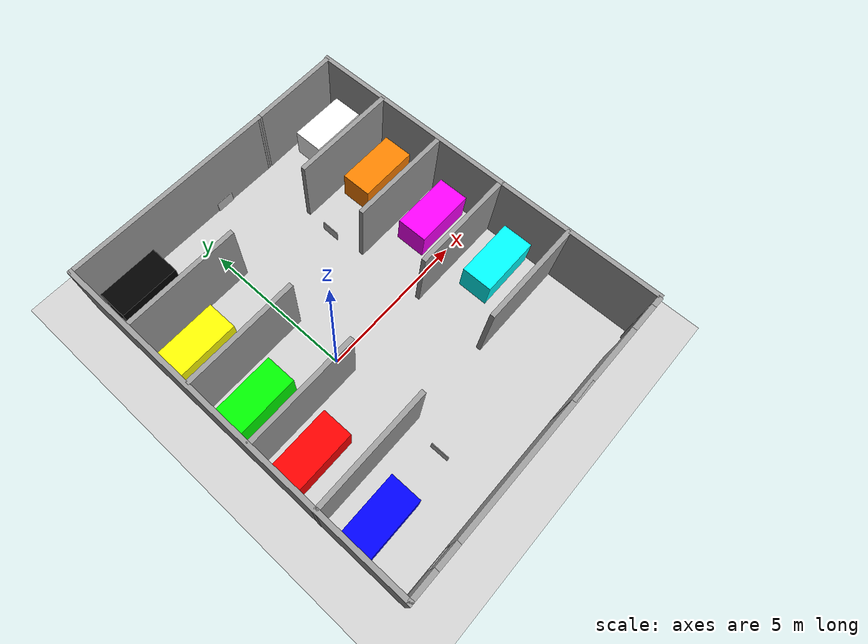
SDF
<sdf version="1.7">
 <world name="default">
  <light name="sun" type="directional">
   <pose>0 0 10 0 -0 0</pose>
   <diffuse>0.8 0.8 0.8 1</diffuse>
   <specular>0.2 0.2 0.2 1</specular>
   <attenuation>
    <range>1000</range>
    <constant>0.9</constant>
    <linear>0.01</linear>
    <quadratic>0.001</quadratic>
   </attenuation>
   <direction>-0.5 0.1 -0.9</direction>
   <spot><inner_angle>0</inner_angle><outer_angle>0</outer_angle><falloff>0</falloff></spot>
  </light>
  <model name="ground_plane">
   <static>1</static>
   <link name="link">
    <collision name="collision">
     <geometry><plane><normal>0 0 1</normal><size>100 100</size></plane></geometry>
     <surface><friction><ode><mu>100</mu><mu2>50</mu2></ode></friction></surface>
    </collision>
    <visual name="visual">
     <cast_shadows>0</cast_shadows>
     <geometry><plane><normal>0 0 1</normal><size>100 100</size></plane></geometry>
     <material>
      <script><uri>file://media/materials/scripts/gazebo.material</uri><name>Gazebo/Grey</name></script>
     </material>
    </visual>
   </link>
  </model>
  <gravity>0 0 -9.8</gravity>
  <magnetic_field>6e-06 2.3e-05 -4.2e-05</magnetic_field>
  <atmosphere type="adiabatic"/>
  <physics type="ode">
   <max_step_size>0.001</max_step_size>
   <real_time_factor>1</real_time_factor>
   <real_time_update_rate>1000</real_time_update_rate>
  </physics>
  <scene><ambient>0.4 0.4 0.4 1</ambient><background>0.7 0.7 0.7 1</background><shadows>1</shadows></scene>
  <spherical_coordinates>
   <surface_model>EARTH_WGS84</surface_model>
   <latitude_deg>0</latitude_deg>
   <longitude_deg>0</longitude_deg>
   <elevation>0</elevation>
   <heading_deg>0</heading_deg>
  </spherical_coordinates>
  <model name="new_hospital">
   <pose>1.51505 0.35072 0 0 -0 0</pose>
   <link name="Wall_0">
    <collision name="Wall_0_Collision">
     <geometry><box><size>12.3051 0.15 2.5</size></box></geometry>
     <pose>0 0 1.25 0 -0 0</pose>
    </collision>
    <visual name="Wall_0_Visual">
     <pose>0 0 1.25 0 -0 0</pose>
     <geometry><box><size>12.3051 0.15 2.5</size></box></geometry>
     <material>
      <script><uri>file://media/materials/scripts/gazebo.material</uri><name>Gazebo/Grey</name></script>
      <ambient>1 1 1 1</ambient>
     </material>
     <meta><layer>0</layer></meta>
    </visual>
    <pose>-5.0818 0.002297 0 0 -0 -1.5708</pose>
   </link>
   <link name="Wall_1">
    <collision name="Wall_1_Collision">
     <geometry><box><size>0.15 0.15 2.5</size></box></geometry>
     <pose>0 0 1.25 0 -0 0</pose>
    </collision>
    <visual name="Wall_1_Visual">
     <pose>0 0 1.25 0 -0 0</pose>
     <geometry><box><size>0.15 0.15 2.5</size></box></geometry>
     <material>
      <script><uri>file://media/materials/scripts/gazebo.material</uri><name>Gazebo/Grey</name></script>
      <ambient>1 1 1 1</ambient>
     </material>
     <meta><layer>0</layer></meta>
    </visual>
    <pose>-5.07745 -6.07527 0 0 -0 0</pose>
   </link>
   <link name="Wall_15">
    <collision name="Wall_15_Collision">
     <geometry><box><size>12.3753 0.15 2.5</size></box></geometry>
     <pose>0 0 1.25 0 -0 0</pose>
    </collision>
    <visual name="Wall_15_Visual">
     <pose>0 0 1.25 0 -0 0</pose>
     <geometry><box><size>12.3753 0.15 2.5</size></box></geometry>
     <material>
      <script><uri>file://media/materials/scripts/gazebo.material</uri><name>Gazebo/Grey</name></script>
      <ambient>1 1 1 1</ambient>
     </material>
     <meta><layer>0</layer></meta>
    </visual>
    <pose>5.06248 0.015457 0 0 -0 -1.56701</pose>
   </link>
   <link name="Wall_17">
    <collision name="Wall_17_Collision">
     <geometry><box><size>3.1412 0.15 2.5</size></box></geometry>
     <pose>0 0 1.25 0 -0 0</pose>
    </collision>
    <visual name="Wall_17_Visual">
     <pose>0 0 1.25 0 -0 0</pose>
     <geometry><box><size>3.1412 0.15 2.5</size></box></geometry>
     <material>
      <script><uri>file://media/materials/scripts/gazebo.material</uri><name>Gazebo/Grey</name></script>
      <ambient>1 1 1 1</ambient>
     </material>
     <meta><layer>0</layer></meta>
    </visual>
    <pose>3.45215 6.07474 0 0 -0 0.015185</pose>
   </link>
   <link name="Wall_19">
    <collision name="Wall_19_Collision">
     <geometry><box><size>3.75 0.15 2.5</size></box></geometry>
     <pose>0 0 1.25 0 -0 0</pose>
    </collision>
    <visual name="Wall_19_Visual">
     <pose>0 0 1.25 0 -0 0</pose>
     <geometry><box><size>3.75 0.15 2.5</size></box></geometry>
     <material>
      <script><uri>file://media/materials/scripts/gazebo.material</uri><name>Gazebo/Grey</name></script>
      <ambient>1 1 1 1</ambient>
     </material>
     <meta><layer>0</layer></meta>
    </visual>
    <pose>-3.14193 3.76721 0 0 -0 0</pose>
   </link>
   <link name="Wall_23">
    <collision name="Wall_23_Collision">
     <geometry><box><size>3.75 0.15 2.5</size></box></geometry>
     <pose>0 0 1.25 0 -0 0</pose>
    </collision>
    <visual name="Wall_23_Visual">
     <pose>0 0 1.25 0 -0 0</pose>
     <geometry><box><size>3.75 0.15 2.5</size></box></geometry>
     <material>
      <script><uri>file://media/materials/scripts/gazebo.material</uri><name>Gazebo/Grey</name></script>
      <ambient>1 1 1 1</ambient>
     </material>
     <meta><layer>0</layer></meta>
    </visual>
    <pose>-3.18338 1.40651 0 0 -0 0</pose>
   </link>
   <link name="Wall_26">
    <collision name="Wall_26_Collision">
     <geometry><box><size>3.75 0.15 2.5</size></box></geometry>
     <pose>0 0 1.25 0 -0 0</pose>
    </collision>
    <visual name="Wall_26_Visual">
     <pose>0 0 1.25 0 -0 0</pose>
     <geometry><box><size>3.75 0.15 2.5</size></box></geometry>
     <material>
      <script><uri>file://media/materials/scripts/gazebo.material</uri><name>Gazebo/Grey</name></script>
      <ambient>1 1 1 1</ambient>
     </material>
     <meta><layer>0</layer></meta>
    </visual>
    <pose>-3.20329 -0.847547 0 0 -0 0</pose>
   </link>
   <link name="Wall_29">
    <collision name="Wall_29_Collision">
     <geometry><box><size>4 0.15 2.5</size></box></geometry>
     <pose>0 0 1.25 0 -0 0</pose>
    </collision>
    <visual name="Wall_29_Visual">
     <pose>0 0 1.25 0 -0 0</pose>
     <geometry><box><size>4 0.15 2.5</size></box></geometry>
     <material>
      <script><uri>file://media/materials/scripts/gazebo.material</uri><name>Gazebo/Grey</name></script>
      <ambient>1 1 1 1</ambient>
     </material>
     <meta><layer>0</layer></meta>
    </visual>
    <pose>-3.16089 -3.14589 0 0 -0 0</pose>
   </link>
   <link name="Wall_3">
    <collision name="Wall_3_Collision">
     <geometry><box><size>7.18423 0.15 2.5</size></box></geometry>
     <pose>0 0 1.25 0 -0 0</pose>
    </collision>
    <visual name="Wall_3_Visual">
     <pose>0 0 1.25 0 -0 0</pose>
     <geometry><box><size>7.18423 0.15 2.5</size></box></geometry>
     <material>
      <script><uri>file://media/materials/scripts/gazebo.material</uri><name>Gazebo/Grey</name></script>
      <ambient>1 1 1 1</ambient>
     </material>
     <meta><layer>0</layer></meta>
    </visual>
    <pose>-1.56036 6.06595 0 0 -0 -0.003956</pose>
   </link>
   <link name="Wall_31">
    <collision name="Wall_31_Collision">
     <geometry><box><size>3.5 0.15 2.5</size></box></geometry>
     <pose>0 0 1.25 0 -0 0</pose>
    </collision>
    <visual name="Wall_31_Visual">
     <pose>0 0 1.25 0 -0 0</pose>
     <geometry><box><size>3.5 0.15 2.5</size></box></geometry>
     <material>
      <script><uri>file://media/materials/scripts/gazebo.material</uri><name>Gazebo/Grey</name></script>
      <ambient>1 1 1 1</ambient>
     </material>
     <meta><layer>0</layer></meta>
    </visual>
    <pose>3.29176 3.78007 0 0 -0 0</pose>
   </link>
   <link name="Wall_33">
    <collision name="Wall_33_Collision">
     <geometry><box><size>3.5 0.15 2.5</size></box></geometry>
     <pose>0 0 1.25 0 -0 0</pose>
    </collision>
    <visual name="Wall_33_Visual">
     <pose>0 0 1.25 0 -0 0</pose>
     <geometry><box><size>3.5 0.15 2.5</size></box></geometry>
     <material>
      <script><uri>file://media/materials/scripts/gazebo.material</uri><name>Gazebo/Grey</name></script>
      <ambient>1 1 1 1</ambient>
     </material>
     <meta><layer>0</layer></meta>
    </visual>
    <pose>3.35294 1.54698 0 0 -0 0</pose>
   </link>
   <link name="Wall_35">
    <collision name="Wall_35_Collision">
     <geometry><box><size>3.5 0.15 2.5</size></box></geometry>
     <pose>0 0 1.25 0 -0 0</pose>
    </collision>
    <visual name="Wall_35_Visual">
     <pose>0 0 1.25 0 -0 0</pose>
     <geometry><box><size>3.5 0.15 2.5</size></box></geometry>
     <material>
      <script><uri>file://media/materials/scripts/gazebo.material</uri><name>Gazebo/Grey</name></script>
      <ambient>1 1 1 1</ambient>
     </material>
     <meta><layer>0</layer></meta>
    </visual>
    <pose>3.37986 -0.751165 0 0 -0 0</pose>
   </link>
   <link name="Wall_37">
    <collision name="Wall_37_Collision">
     <geometry><box><size>3.5 0.15 2.5</size></box></geometry>
     <pose>0 0 1.25 0 -0 0</pose>
    </collision>
    <visual name="Wall_37_Visual">
     <pose>0 0 1.25 0 -0 0</pose>
     <geometry><box><size>3.5 0.15 2.5</size></box></geometry>
     <material>
      <script><uri>file://media/materials/scripts/gazebo.material</uri><name>Gazebo/Grey</name></script>
      <ambient>1 1 1 1</ambient>
     </material>
     <meta><layer>0</layer></meta>
    </visual>
    <pose>3.3491 -3.15075 0 0 -0 0</pose>
   </link>
   <link name="Wall_5">
    <pose>-1.60662 -6.08918 0 0 -0 3.13758</pose>
    <visual name="Wall_5_Visual_0">
     <pose>-0.897025 0 1.25 0 -0 0</pose>
     <geometry><box><size>5.29766 0.15 2.5</size></box></geometry>
     <material>
      <script><uri>file://media/materials/scripts/gazebo.material</uri><name>Gazebo/Grey</name></script>
      <ambient>1 1 1 1</ambient>
     </material>
     <meta><layer>0</layer></meta>
    </visual>
    <collision name="Wall_5_Collision_0">
     <geometry><box><size>5.29766 0.15 2.5</size></box></geometry>
     <pose>-0.897025 0 1.25 0 -0 0</pose>
    </collision>
    <visual name="Wall_5_Visual_1">
     <pose>2.64883 0 0.25 0 -0 0</pose>
     <geometry><box><size>1.79405 0.15 0.5</size></box></geometry>
     <material>
      <script><uri>file://media/materials/scripts/gazebo.material</uri><name>Gazebo/Grey</name></script>
      <ambient>1 1 1 1</ambient>
     </material>
     <meta><layer>0</layer></meta>
    </visual>
    <collision name="Wall_5_Collision_1">
     <geometry><box><size>1.79405 0.15 0.5</size></box></geometry>
     <pose>2.64883 0 0.25 0 -0 0</pose>
    </collision>
    <visual name="Wall_5_Visual_2">
     <pose>3.04883 0 1.5 0 -0 0</pose>
     <geometry><box><size>0.994051 0.15 2</size></box></geometry>
     <material>
      <script><uri>file://media/materials/scripts/gazebo.material</uri><name>Gazebo/Grey</name></script>
      <ambient>1 1 1 1</ambient>
     </material>
     <meta><layer>0</layer></meta>
    </visual>
    <collision name="Wall_5_Collision_2">
     <geometry><box><size>0.994051 0.15 2</size></box></geometry>
     <pose>3.04883 0 1.5 0 -0 0</pose>
    </collision>
    <visual name="Wall_5_Visual_3">
     <pose>2.1518 0 1.9 0 -0 0</pose>
     <geometry><box><size>0.8 0.15 1.2</size></box></geometry>
     <material>
      <script><uri>file://media/materials/scripts/gazebo.material</uri><name>Gazebo/Grey</name></script>
      <ambient>1 1 1 1</ambient>
     </material>
     <meta><layer>0</layer></meta>
    </visual>
    <collision name="Wall_5_Collision_3">
     <geometry><box><size>0.8 0.15 1.2</size></box></geometry>
     <pose>2.1518 0 1.9 0 -0 0</pose>
    </collision>
   </link>
   <link name="Wall_8">
    <pose>3.11412 -6.11242 0 0 -0 3.13346</pose>
    <visual name="Wall_8_Visual_0">
     <pose>-1.78285 0 1.25 0 -0 0</pose>
     <geometry><box><size>0.343861 0.15 2.5</size></box></geometry>
     <material>
      <script><uri>file://media/materials/scripts/gazebo.material</uri><name>Gazebo/Grey</name></script>
      <ambient>1 1 1 1</ambient>
     </material>
     <meta><layer>0</layer></meta>
    </visual>
    <collision name="Wall_8_Collision_0">
     <geometry><box><size>0.343861 0.15 2.5</size></box></geometry>
     <pose>-1.78285 0 1.25 0 -0 0</pose>
    </collision>
    <visual name="Wall_8_Visual_1">
     <pose>0.621931 0 1.25 0 -0 0</pose>
     <geometry><box><size>2.66569 0.15 2.5</size></box></geometry>
     <material>
      <script><uri>file://media/materials/scripts/gazebo.material</uri><name>Gazebo/Grey</name></script>
      <ambient>1 1 1 1</ambient>
     </material>
     <meta><layer>0</layer></meta>
    </visual>
    <collision name="Wall_8_Collision_1">
     <geometry><box><size>2.66569 0.15 2.5</size></box></geometry>
     <pose>0.621931 0 1.25 0 -0 0</pose>
    </collision>
    <visual name="Wall_8_Visual_2">
     <pose>-1.16091 0 2.25 0 -0 0</pose>
     <geometry><box><size>0.9 0.15 0.5</size></box></geometry>
     <material>
      <script><uri>file://media/materials/scripts/gazebo.material</uri><name>Gazebo/Grey</name></script>
      <ambient>1 1 1 1</ambient>
     </material>
     <meta><layer>0</layer></meta>
    </visual>
    <collision name="Wall_8_Collision_2">
     <geometry><box><size>0.9 0.15 0.5</size></box></geometry>
     <pose>-1.16091 0 2.25 0 -0 0</pose>
    </collision>
   </link>
   <static>1</static>
  </model>
  <model name="new_hospital.world">
   <model name="box_2x1">
    <link name="link">
     <collision name="collision"><geometry><box><size>1 2 1</size></box></geometry></collision>
     <visual name="visual">
      <geometry><box><size>1 2 1</size></box></geometry>
      <material>
       <ambient>0 0 1 1</ambient>
       <diffuse>0 0 1 1</diffuse>
       <specular>0.1 0.1 0.1 1</specular>
       <emissive>0 0 0 1</emissive>
      </material>
     </visual>
     <inertial>
      <inertia><ixx>1</ixx><ixy>0</ixy><ixz>0</ixz><iyy>1</iyy><iyz>0</iyz><izz>1</izz></inertia>
      <mass>1</mass>
     </inertial>
    </link>
    <pose>-0.136149 -0.19596 0 0 0 -1.56403</pose>
   </model>
   <model name="box_2x1_clone">
    <link name="link">
     <collision name="collision"><geometry><box><size>1 2 1</size></box></geometry></collision>
     <visual name="visual">
      <geometry><box><size>1 2 1</size></box></geometry>
      <material>
       <ambient>1 0 0 1</ambient>
       <diffuse>1 0 0 1</diffuse>
       <specular>0.1 0.1 0.1 1</specular>
       <emissive>0 0 0 1</emissive>
      </material>
     </visual>
     <inertial>
      <inertia><ixx>1</ixx><ixy>0</ixy><ixz>0</ixz><iyy>1</iyy><iyz>0</iyz><izz>1</izz></inertia>
      <mass>1</mass>
     </inertial>
    </link>
    <pose>-0.11002 2.28601 -0 -0 -0 -1.56403</pose>
   </model>
   <model name="box_2x1_clone_0">
    <link name="link">
     <collision name="collision"><geometry><box><size>1 2 1</size></box></geometry></collision>
     <visual name="visual">
      <geometry><box><size>1 2 1</size></box></geometry>
      <material>
       <ambient>0 1 0 1</ambient>
       <diffuse>0 1 0 1</diffuse>
       <specular>0.1 0.1 0.1 1</specular>
       <emissive>0 0 0 1</emissive>
      </material>
     </visual>
     <inertial>
      <inertia><ixx>1</ixx><ixy>0</ixy><ixz>0</ixz><iyy>1</iyy><iyz>0</iyz><izz>1</izz></inertia>
      <mass>1</mass>
     </inertial>
    </link>
    <pose>-0.090023 4.46995 -0 -0 -0 -1.56403</pose>
   </model>
   <model name="box_2x1_clone_1">
    <link name="link">
     <collision name="collision"><geometry><box><size>1 2 1</size></box></geometry></collision>
     <visual name="visual">
      <geometry><box><size>1 2 1</size></box></geometry>
      <material>
       <ambient>1 1 0 1</ambient>
       <diffuse>1 1 0 1</diffuse>
       <specular>0.1 0.1 0.1 1</specular>
       <emissive>0 0 0 1</emissive>
      </material>
     </visual>
     <inertial>
      <inertia><ixx>1</ixx><ixy>0</ixy><ixz>0</ixz><iyy>1</iyy><iyz>0</iyz><izz>1</izz></inertia>
      <mass>1</mass>
     </inertial>
    </link>
    <pose>-0.107605 6.85945 -0 -0 -0 -1.56403</pose>
   </model>
   <model name="box_2x1_clone_2">
    <link name="link">
     <collision name="collision"><geometry><box><size>1 2 1</size></box></geometry></collision>
     <visual name="visual">
      <geometry><box><size>1 2 1</size></box></geometry>
      <material>
       <ambient>0 1 1 1</ambient>
       <diffuse>0 1 1 1</diffuse>
       <specular>0.1 0.1 0.1 1</specular>
       <emissive>0 0 0 1</emissive>
      </material>
     </visual>
     <inertial>
      <inertia><ixx>1</ixx><ixy>0</ixy><ixz>0</ixz><iyy>1</iyy><iyz>0</iyz><izz>1</izz></inertia>
      <mass>1</mass>
     </inertial>
    </link>
    <pose>7.73526 2.23506 -0 -0 -0 -1.56403</pose>
   </model>
   <model name="box_2x1_clone_3">
    <link name="link">
     <collision name="collision"><geometry><box><size>1 2 1</size></box></geometry></collision>
     <visual name="visual">
      <geometry><box><size>1 2 1</size></box></geometry>
      <material>
       <ambient>1 0 1 1</ambient>
       <diffuse>1 0 1 1</diffuse>
       <specular>0.1 0.1 0.1 1</specular>
       <emissive>0 0 0 1</emissive>
      </material>
     </visual>
     <inertial>
      <inertia><ixx>1</ixx><ixy>0</ixy><ixz>0</ixz><iyy>1</iyy><iyz>0</iyz><izz>1</izz></inertia>
      <mass>1</mass>
     </inertial>
    </link>
    <pose>7.68433 4.72047 -0 -0 -0 -1.56403</pose>
   </model>
   <model name="box_2x1_clone_4">
    <link name="link">
     <collision name="collision"><geometry><box><size>1 2 1</size></box></geometry></collision>
     <visual name="visual">
      <geometry><box><size>1 2 1</size></box></geometry>
      <material>
       <ambient>1 0.5 0 1</ambient>
       <diffuse>1 0.5 0 1</diffuse>
       <specular>0.1 0.1 0.1 1</specular>
       <emissive>0 0 0 1</emissive>
      </material>
     </visual>
     <inertial>
      <inertia><ixx>1</ixx><ixy>0</ixy><ixz>0</ixz><iyy>1</iyy><iyz>0</iyz><izz>1</izz></inertia>
      <mass>1</mass>
     </inertial>
    </link>
    <pose>7.72241 7.06918 -0 -0 -0 -1.56403</pose>
   </model>
   <model name="box_2x1_clone_5">
    <link name="link">
     <collision name="collision"><geometry><box><size>1 2 1</size></box></geometry></collision>
     <visual name="visual">
      <geometry><box><size>1 2 1</size></box></geometry>
      <material>
       <ambient>1 1 1 1</ambient>
       <diffuse>1 1 1 1</diffuse>
       <specular>0.1 0.1 0.1 1</specular>
       <emissive>0 0 0 1</emissive>
      </material>
     </visual>
     <inertial>
      <inertia><ixx>1</ixx><ixy>0</ixy><ixz>0</ixz><iyy>1</iyy><iyz>0</iyz><izz>1</izz></inertia>
      <mass>1</mass>
     </inertial>
    </link>
    <pose>7.88052 9.34543 -0 -0 -0 -1.56403</pose>
   </model>
   <model name="box_2x1_clone_6">
    <link name="link">
     <collision name="collision"><geometry><box><size>1 2 1</size></box></geometry></collision>
     <visual name="visual">
      <geometry><box><size>1 2 1</size></box></geometry>
      <material>
       <ambient>0 0 0 1</ambient>
       <diffuse>0 0 0 1</diffuse>
       <specular>0.1 0.1 0.1 1</specular>
       <emissive>0 0 0 1</emissive>
      </material>
     </visual>
     <inertial>
      <inertia><ixx>1</ixx><ixy>0</ixy><ixz>0</ixz><iyy>1</iyy><iyz>0</iyz><izz>1</izz></inertia>
      <mass>1</mass>
     </inertial>
    </link>
    <pose>-0.059468 9.44473 -0 -0 -0 -1.56403</pose>
   </model>
   <static>0</static>
   <pose>-2.35388 -3.7322 0.5 -1e-06 -0 -0.005452</pose>
  </model>
  <model name="bed_sign_A">
   <static>1</static>
   <link name="sign_link">
    <pose>0 0 1 0 -0 0</pose>
    <collision name="collision"><geometry><box><size>0.6 0.02 0.4</size></box></geometry></collision>
    <visual name="visual">
     <geometry><box><size>0.6 0.02 0.4</size></box></geometry>
     <material>
      <script>
       <uri>model://sign_A/materials/scripts</uri>
       <uri>model://sign_A/materials/textures</uri>
       <name>BedSigns/A_sign</name>
      </script>
     </material>
    </visual>
   </link>
   <pose>-0.064768 -3.93857 -0.700596 0 -0 1.57541</pose>
  </model>
  <model name="bed_sign_restaurant">
   <static>1</static>
   <link name="sign_link">
    <pose>0 0 1 0 -0 0</pose>
    <collision name="collision"><geometry><box><size>0.6 0.02 0.4</size></box></geometry></collision>
    <visual name="visual">
     <geometry><box><size>0.6 0.02 0.4</size></box></geometry>
     <material>
      <script>
       <uri>model://sign_restaurant/materials/scripts</uri>
       <uri>model://sign_restaurant/materials/textures</uri>
       <name>BedSigns/restaurant_sign</name>
      </script>
     </material>
    </visual>
   </link>
   <pose>2.93867 3.02537 -0.669326 0 0 -1.58789</pose>
  </model>
  <model name="bed_sign_toilet">
   <static>1</static>
   <link name="sign_link">
    <pose>0 0 1 0 -0 0</pose>
    <collision name="collision"><geometry><box><size>0.6 0.02 0.4</size></box></geometry></collision>
    <visual name="visual">
     <geometry><box><size>0.6 0.02 0.4</size></box></geometry>
     <material>
      <script>
       <uri>model://sign_toilet/materials/scripts</uri>
       <uri>model://sign_toilet/materials/textures</uri>
       <name>BedSigns/toilet_sign</name>
      </script>
     </material>
    </visual>
   </link>
   <pose>1.44403 6.24379 -0.674661 0 -0 0</pose>
  </model>
 </world>
</sdf>
